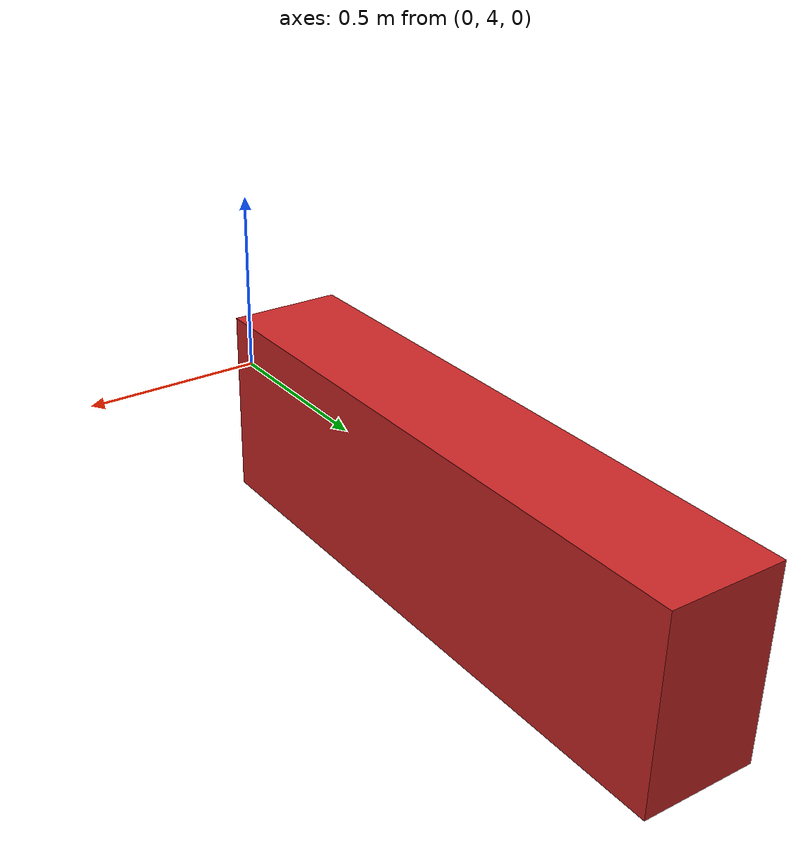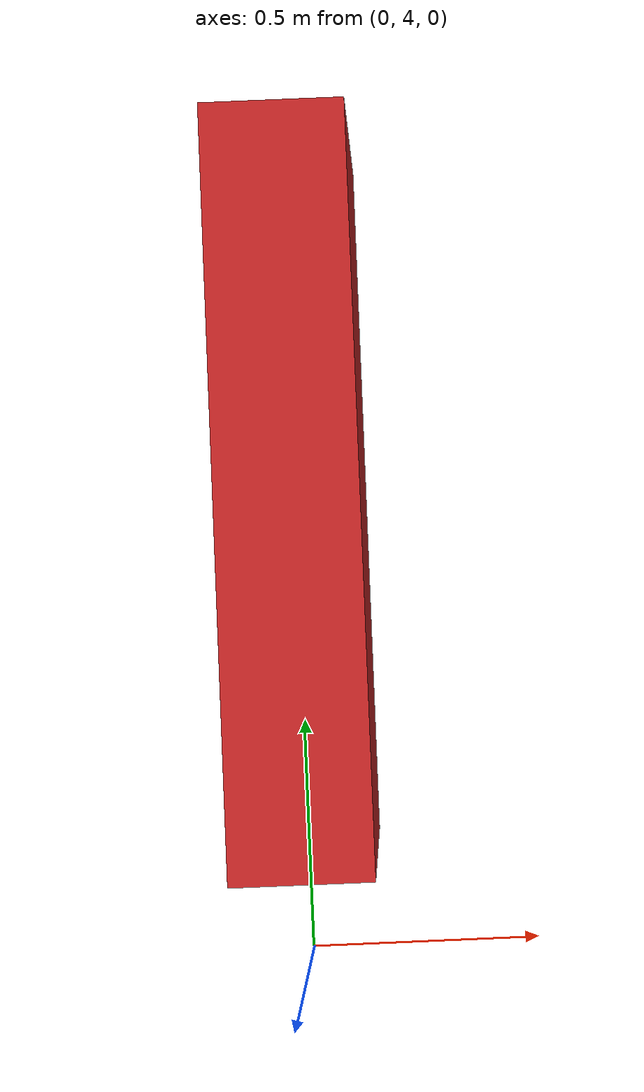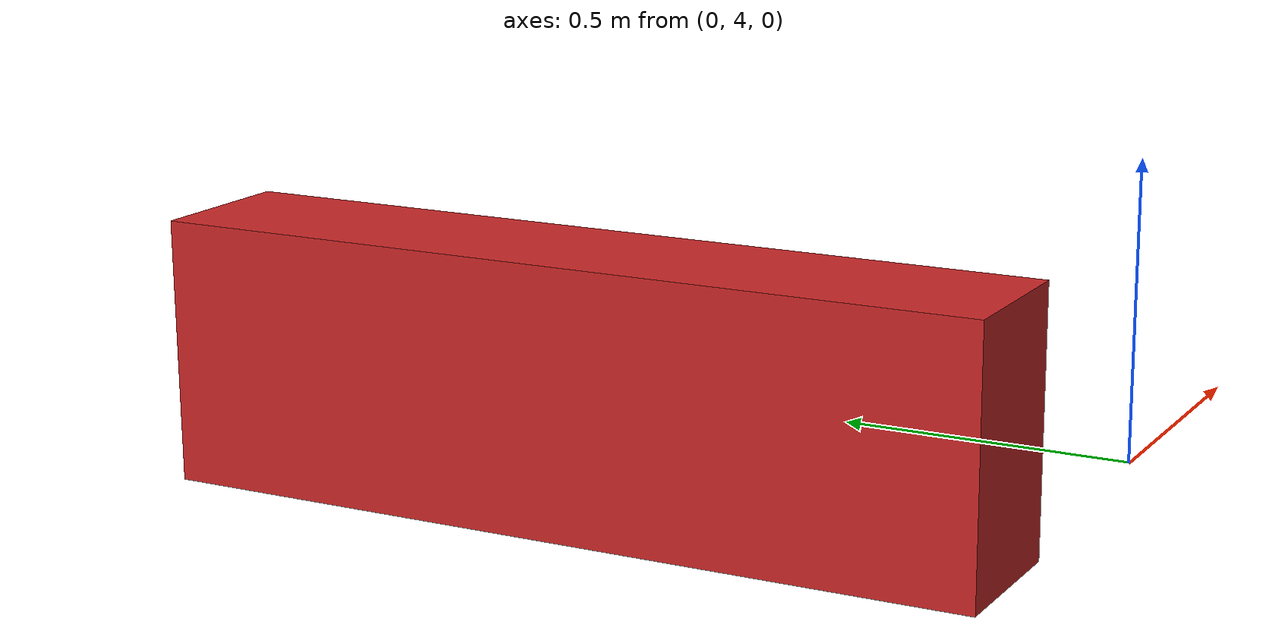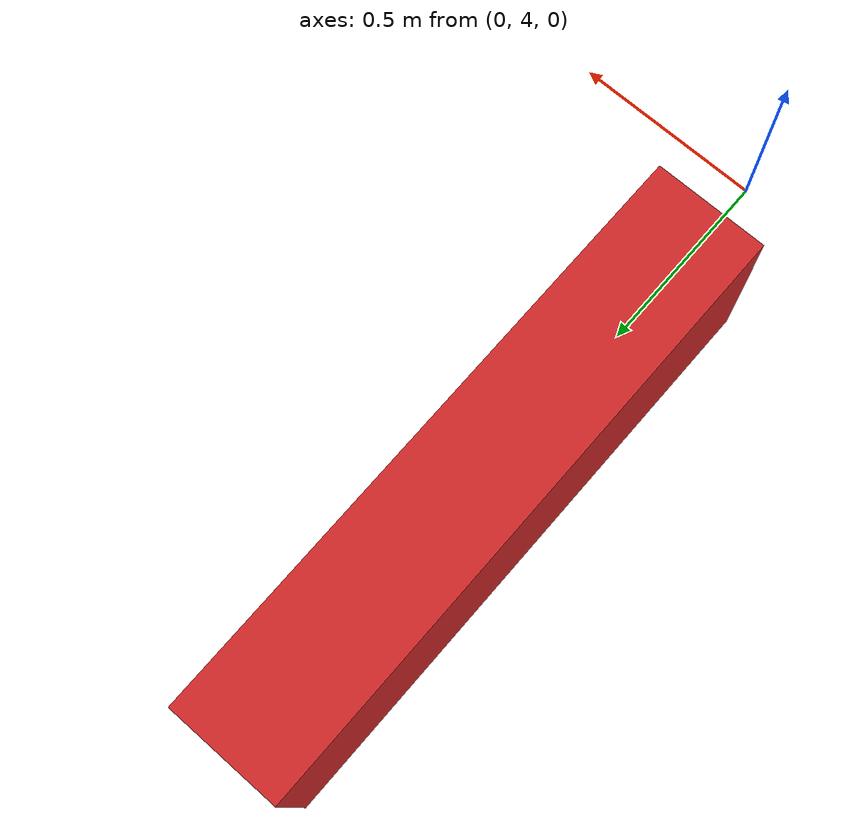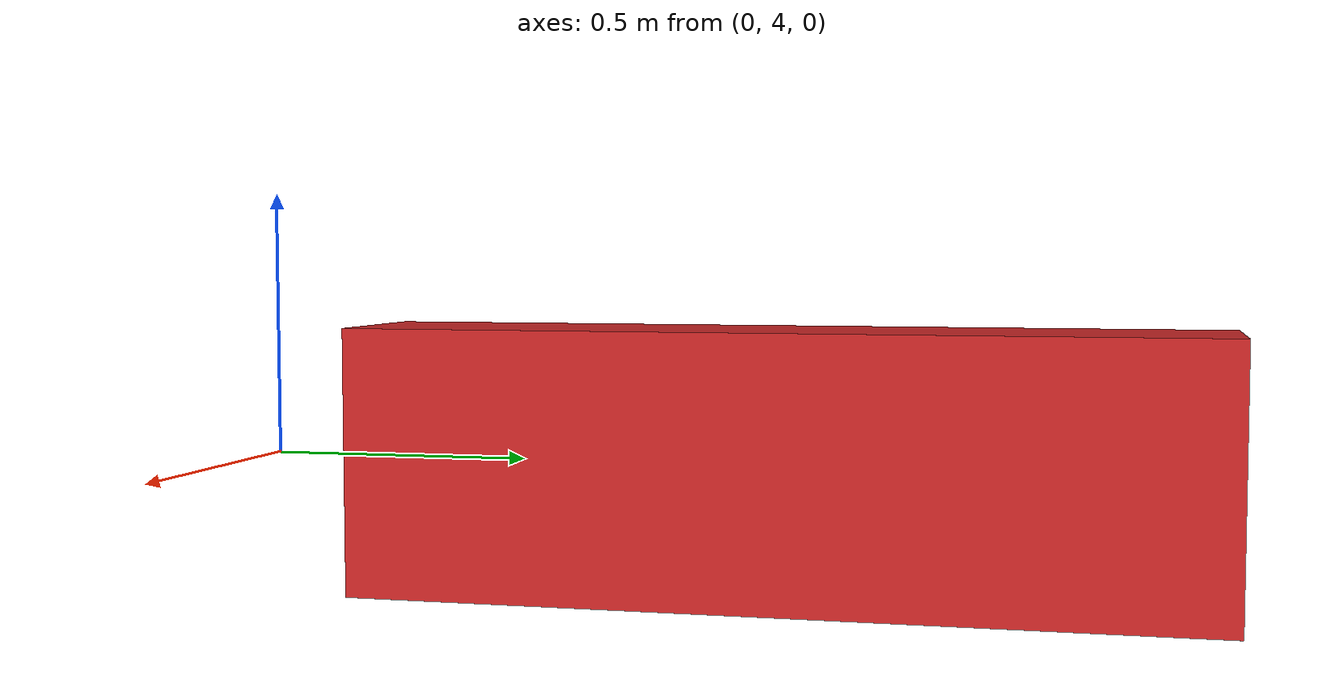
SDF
<?xml version="1.0"?>
<sdf version='1.6'>
  <model name='red_box'>
      <pose>0 5 0 0 -0 0</pose>
      <link name='link'>
        <inertial>
          <mass>0.5</mass>
          <inertia>
            <ixx>0.116667</ixx>
            <ixy>0</ixy>
            <ixz>0</ixz>
            <iyy>0.116667</iyy>
            <iyz>0</iyz>
            <izz>0.116667</izz>
          </inertia>
          <pose>0 0 0 0 -0 0</pose>
        </inertial>
        <collision name='collision'>
          <geometry>
            <box>
              <size>0.299996 1.599996 0.5</size>
            </box>
          </geometry>
                    <surface>
              <friction>
                <ode>
                  <mu>0.01</mu>
                  <mu2>0.01</mu2>
                </ode>
              </friction>
            </surface>
          <max_contacts>10</max_contacts>
        </collision>
        <visual name='visual'>
          <geometry>
            <box>
              <size>0.299996 1.599996 0.5</size>
            </box>
          </geometry>
          <material>
            <script>
              <name>Gazebo/Red</name>
              <uri>file://media/materials/scripts/gazebo.material</uri>
            </script>
          </material>
        </visual>
        <self_collide>0</self_collide>
        <enable_wind>0</enable_wind>
        <kinematic>0</kinematic>
      </link>
    </model>
    </sdf>
